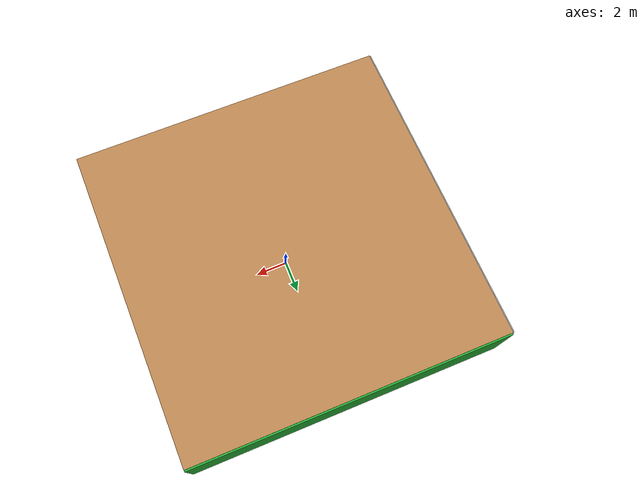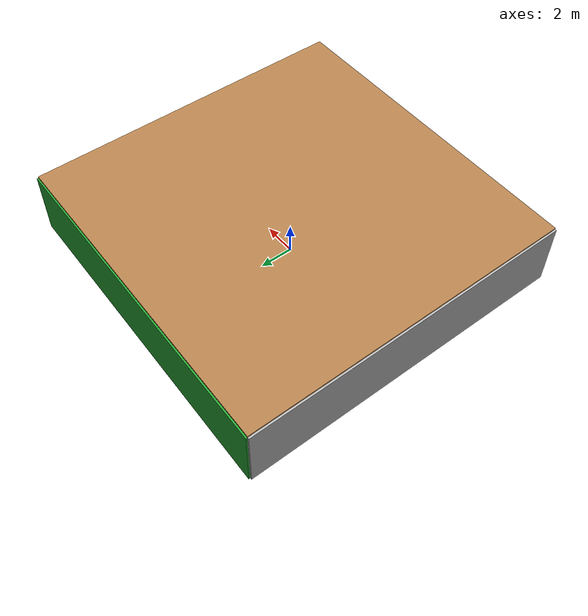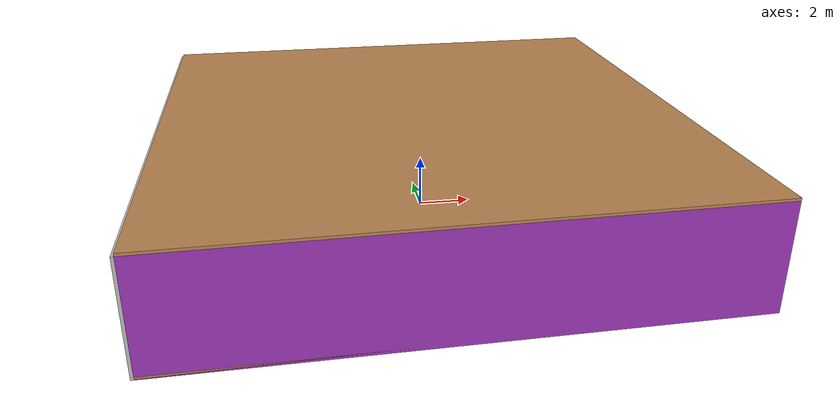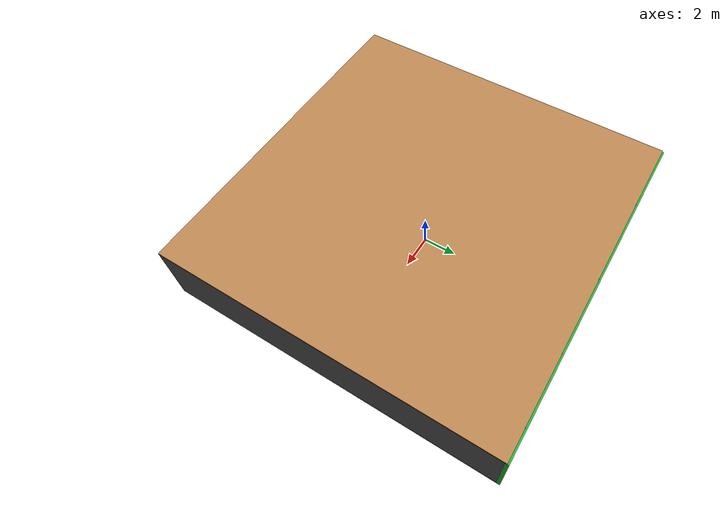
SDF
<sdf version="1.4">
 <world name="default">
  <physics type="ode">
   <max_step_size>0.001</max_step_size>
   <real_time_factor>1</real_time_factor>
   <real_time_update_rate>1000</real_time_update_rate>
   <gravity>0 0 -9.8</gravity>
  </physics>
  <scene><ambient>0.4 0.4 0.4 1</ambient><background>0.7 0.7 0.7 1</background><shadows>1</shadows></scene>
  <model name="Surrounding">
   <static>1</static>
   <link name="Ceiling">
    <collision name="Ceiling_Collision"><geometry><box><size>20 20 0.1</size></box></geometry></collision>
    <visual name="Ceiling_Visual">
     <geometry><box><size>20 20 0.1</size></box></geometry>
     <material>
      <script><uri>file://media/materials/scripts/gazebo.material</uri><name>Gazebo/WoodPallet</name></script>
     </material>
    </visual>
    <pose>0 0 4.05 0 0 0</pose>
   </link>
   <link name="Wall_South">
    <collision name="Wall_South_Collision">
     <geometry><box><size>20 0 4</size></box></geometry>
     <pose>0 0 2 0 -0 0</pose>
    </collision>
    <visual name="Wall_South_Visual">
     <pose>0 0 2 0 -0 0</pose>
     <geometry><box><size>20 0 4</size></box></geometry>
     <material>
      <script><uri>file://media/materials/scripts/gazebo.material</uri><name>Gazebo/Purple</name></script>
     </material>
    </visual>
    <velocity_decay><linear>0</linear><angular>0</angular></velocity_decay>
    <pose>0 -10 0 0 -0 0</pose>
   </link>
   <link name="Wall_East">
    <collision name="Wall_21_Collision">
     <geometry><box><size>20 0 4</size></box></geometry>
     <pose>0 0 2 0 -0 0</pose>
    </collision>
    <visual name="Wall_21_Visual">
     <pose>0 0 2 0 -0 0</pose>
     <geometry><box><size>20 0 4</size></box></geometry>
     <material>
      <script><uri>file://media/materials/scripts/gazebo.material</uri><name>Gazebo/Road</name></script>
     </material>
    </visual>
    <velocity_decay><linear>0</linear><angular>0</angular></velocity_decay>
    <pose>10 0 0 0 -0 1.5708</pose>
   </link>
   <link name="Wall_North">
    <collision name="Wall_22_Collision">
     <geometry><box><size>20 0.2 4</size></box></geometry>
     <pose>0 0 2 0 -0 0</pose>
    </collision>
    <visual name="Wall_22_Visual">
     <pose>0 0 2 0 -0 0</pose>
     <geometry><box><size>20 0.2 4</size></box></geometry>
     <material>
      <script><uri>file://media/materials/scripts/gazebo.material</uri><name>Gazebo/GreenGlow</name></script>
     </material>
    </visual>
    <velocity_decay><linear>0</linear><angular>0</angular></velocity_decay>
    <pose>0 10 0 0 -0 0</pose>
   </link>
   <link name="Wall_West">
    <collision name="Wall_23_Collision">
     <geometry><box><size>20 0.2 4</size></box></geometry>
     <pose>0 0 2 0 -0 0</pose>
    </collision>
    <visual name="Wall_23_Visual">
     <pose>0 0 2 0 -0 0</pose>
     <geometry><box><size>20 0.2 4</size></box></geometry>
     <material>
      <script><uri>file://media/materials/scripts/gazebo.material</uri><name>Gazebo/LightOff</name></script>
     </material>
    </visual>
    <velocity_decay><linear>0</linear><angular>0</angular></velocity_decay>
    <pose>-10 0 0 0 0 -1.5708</pose>
   </link>
   <link name="Ground_link">
    <collision name="collision">
     <pose>0 0 .05 0 -0 0</pose>
     <geometry><box><size>20 20 0.1</size></box></geometry>
    </collision>
    <visual name="visual">
     <pose>0 0 .05 0 -0 0</pose>
     <geometry><box><size>20 20 0.1</size></box></geometry>
     <material>
      <script><uri>file://media/materials/scripts/gazebo.material</uri><name>Gazebo/WoodPallet</name></script>
     </material>
    </visual>
   </link>
   <static>1</static>
  </model>
  <spherical_coordinates>
   <surface_model>EARTH_WGS84</surface_model>
   <latitude_deg>0</latitude_deg>
   <longitude_deg>0</longitude_deg>
   <elevation>0</elevation>
   <heading_deg>0</heading_deg>
  </spherical_coordinates>
  <light name="lightball_0" type="diffuse">
   <diffuse>0.8 0.8 0.8 1</diffuse>
   <specular>0.2 0.2 0.2 1</specular>
   <attenuation>
    <range>100</range>
    <constant>0.7</constant>
    <linear>0.01</linear>
    <quadratic>0.001</quadratic>
   </attenuation>
   <direction>-0.5 0.1 -0.9</direction>
   <pose>-9.83383579533 4.94346763626 3.39225528925 0 0 0</pose>
  </light>
  <light name="lightball_1" type="diffuse">
   <diffuse>0.8 0.8 0.8 1</diffuse>
   <specular>0.2 0.2 0.2 1</specular>
   <attenuation>
    <range>100</range>
    <constant>0.7</constant>
    <linear>0.01</linear>
    <quadratic>0.001</quadratic>
   </attenuation>
   <direction>-0.5 0.1 -0.9</direction>
   <pose>4.62378957551 3.18997249766 0.67804812968 0 0 0</pose>
  </light>
  <light name="lightball_2" type="diffuse">
   <diffuse>0.8 0.8 0.8 1</diffuse>
   <specular>0.2 0.2 0.2 1</specular>
   <attenuation>
    <range>100</range>
    <constant>0.7</constant>
    <linear>0.01</linear>
    <quadratic>0.001</quadratic>
   </attenuation>
   <direction>-0.5 0.1 -0.9</direction>
   <pose>-3.93678189263 0.59846219724 2.08429440484 0 0 0</pose>
  </light>
  <light name="lightball_3" type="diffuse">
   <diffuse>0.8 0.8 0.8 1</diffuse>
   <specular>0.2 0.2 0.2 1</specular>
   <attenuation>
    <range>100</range>
    <constant>0.7</constant>
    <linear>0.01</linear>
    <quadratic>0.001</quadratic>
   </attenuation>
   <direction>-0.5 0.1 -0.9</direction>
   <pose>-5.99168975821 -0.968607289034 3.5078651918 0 0 0</pose>
  </light>
  <include>
   <uri>model://robocup_3Dsim_goal</uri>
   <pose>-5.01417634501 -8.23201062295 0 0 0 1.71554098125</pose>
  </include>
  <include>
   <uri>model://construction_cone</uri>
   <pose>-1.2196656984 -7.48751688415 0 0 0 0.890444148009</pose>
  </include>
  <include>
   <uri>model://robocup_3Dsim_goal</uri>
   <pose>-0.658345327386 -2.57009840211 0 0 0 2.85507134472</pose>
  </include>
  <include><uri>model://cabinet</uri><pose>-1.53285827804 6.9454409225 0 0 0 0.657036810281</pose></include>
  <include><uri>model://cabinet</uri><pose>4.01540265802 -4.13630248825 0 0 0 1.2469424932</pose></include>
  <include><uri>model://cabinet</uri><pose>3.83033832734 3.44664593414 0 0 0 2.65165506556</pose></include>
  <include>
   <uri>model://construction_cone</uri>
   <pose>6.66110410358 -0.949508688585 0 0 0 2.02638694835</pose>
  </include>
  <include>
   <uri>model://construction_cone</uri>
   <pose>7.81589414491 0.94504667419 0 0 0 0.0140117589276</pose>
  </include>
 </world>
</sdf>

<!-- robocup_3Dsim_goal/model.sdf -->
<sdf version="1.5">
  <model name="robocup_3d_goal">
    <static>true</static>
    <link name="left_post">
      <pose>0 1.05 0.45 0 0 0</pose>
      <collision name="collision">
        <geometry>
          <cylinder>
            <radius>0.05</radius>
            <length>0.9</length>
          </cylinder>
        </geometry>
      </collision>
      <visual name="visual">
        <geometry>
          <cylinder>
            <radius>0.05</radius>
            <length>0.9</length>
          </cylinder>
        </geometry>
        <material>
          <script>
            <uri>file://media/materials/scripts/gazebo.material</uri>
            <name>Gazebo/ZincYellow</name>
          </script>
        </material>
      </visual>
    </link>
    <link name="left_support_horiz_lower">
      <pose>0.30 1.05 0.01 0 0 0</pose>
      <collision name="collision">
        <geometry>
          <box>
            <size>0.50 0.02 0.02</size>
          </box>
        </geometry>
      </collision>
      <visual name="visual">
        <geometry>
          <box>
            <size>0.50 0.02 0.02</size>
          </box>
        </geometry>
        <material>
          <script>
            <uri>file://media/materials/scripts/gazebo.material</uri>
            <name>Gazebo/White</name>
          </script>
        </material>
      </visual>
    </link>
    <link name="left_support_horiz_upper">
      <pose>0.30 1.05 0.79 0 0 0</pose>
      <collision name="collision">
        <geometry>
          <box>
            <size>0.50 0.02 0.02</size>
          </box>
        </geometry>
      </collision>
      <visual name="visual">
        <geometry>
          <box>
            <size>0.50 0.02 0.02</size>
          </box>
        </geometry>
        <material>
          <script>
            <uri>file://media/materials/scripts/gazebo.material</uri>
            <name>Gazebo/White</name>
          </script>
        </material>
      </visual>
    </link>
    <link name="left_support_vertical">
      <pose>0.56 1.05 0.4 0 1.5708 0</pose>
      <collision name="collision">
        <geometry>
          <box>
            <size>0.80 0.02 0.02</size>
          </box>
        </geometry>
      </collision>
      <visual name="visual">
        <geometry>
          <box>
            <size>0.80 0.02 0.02</size>
          </box>
        </geometry>
        <material>
          <script>
            <uri>file://media/materials/scripts/gazebo.material</uri>
            <name>Gazebo/White</name>
          </script>
        </material>
      </visual>
    </link>
    <link name="right_support_horiz_lower">
      <pose>0.30 -1.05 0.01 0 0 0</pose>
      <collision name="collision">
        <geometry>
          <box>
            <size>0.50 0.02 0.02</size>
          </box>
        </geometry>
      </collision>
      <visual name="visual">
        <geometry>
          <box>
            <size>0.50 0.02 0.02</size>
          </box>
        </geometry>
        <material>
          <script>
            <uri>file://media/materials/scripts/gazebo.material</uri>
            <name>Gazebo/White</name>
          </script>
        </material>
      </visual>
    </link>
    <link name="right_support_horiz_upper">
      <pose>0.30 -1.05 0.79 0 0 0</pose>
      <collision name="collision">
        <geometry>
          <box>
            <size>0.50 0.02 0.02</size>
          </box>
        </geometry>
      </collision>
      <visual name="visual">
        <geometry>
          <box>
            <size>0.50 0.02 0.02</size>
          </box>
        </geometry>
        <material>
          <script>
            <uri>file://media/materials/scripts/gazebo.material</uri>
            <name>Gazebo/White</name>
          </script>
        </material>
      </visual>
    </link>
    <link name="right_support_vertical">
      <pose>0.56 -1.05 0.4 0 1.5708 0</pose>
      <collision name="collision">
        <geometry>
          <box>
            <size>0.80 0.02 0.02</size>
          </box>
        </geometry>
      </collision>
      <visual name="visual">
        <geometry>
          <box>
            <size>0.80 0.02 0.02</size>
          </box>
        </geometry>
        <material>
          <script>
            <uri>file://media/materials/scripts/gazebo.material</uri>
            <name>Gazebo/White</name>
          </script>
        </material>
      </visual>
    </link>
    <link name="center_support_horiz_lower">
      <pose>0.56 0 0.01 0 1.5708 0</pose>
      <collision name="collision">
        <geometry>
          <box>
            <size>0.02 2.08 0.02</size>
          </box>
        </geometry>
      </collision>
      <visual name="visual">
        <geometry>
          <box>
            <size>0.02 2.08 0.02</size>
          </box>
        </geometry>
        <material>
          <script>
            <uri>file://media/materials/scripts/gazebo.material</uri>
            <name>Gazebo/White</name>
          </script>
        </material>
      </visual>
    </link>
    <link name="center_support_horiz_upper">
      <pose>0.56 0 0.79 0 1.5708 0</pose>
      <collision name="collision">
        <geometry>
          <box>
            <size>0.02 2.08 0.02</size>
          </box>
        </geometry>
      </collision>
      <visual name="visual">
        <geometry>
          <box>
            <size>0.02 2.08 0.02</size>
          </box>
        </geometry>
        <material>
          <script>
            <uri>file://media/materials/scripts/gazebo.material</uri>
            <name>Gazebo/White</name>
          </script>
        </material>
      </visual>
    </link>
    <link name="right_post">
      <pose>0 -1.05 0.45 0 0 0</pose>
      <collision name="collision">
        <geometry>
          <cylinder>
            <radius>0.05</radius>
            <length>0.9</length>
          </cylinder>
        </geometry>
      </collision>
      <visual name="visual">
        <geometry>
          <cylinder>
            <radius>0.05</radius>
            <length>0.9</length>
          </cylinder>
        </geometry>
        <material>
          <script>
            <uri>file://media/materials/scripts/gazebo.material</uri>
            <name>Gazebo/ZincYellow</name>
          </script>
        </material>
      </visual>
    </link>
    <link name="crossbar">
      <pose>0 0 0.85 1.57 1.57 0</pose>
      <collision name="collision">
        <geometry>
          <cylinder>
            <radius>0.05</radius>
            <length>2.0</length>
          </cylinder>
        </geometry>
      </collision>
      <visual name="visual">
        <geometry>
          <cylinder>
            <radius>0.05</radius>
            <length>2.0</length>
          </cylinder>
        </geometry>
        <material>
          <script>
            <uri>file://media/materials/scripts/gazebo.material</uri>
            <name>Gazebo/ZincYellow</name>
          </script>
        </material>
      </visual>
    </link>
    <link name="center_net">
      <pose>0.56 0 0.40 0 0 0</pose>
      <collision name="collision">
        <geometry>
          <box>
            <size>0.01 2.1 0.80</size>
          </box>
        </geometry>
      </collision>
      <visual name="visual">
        <geometry>
          <box>
            <size>0.01 2.1 0.80</size>
          </box>
        </geometry>
        <material>
          <script>
            <uri>model://../model_source/models/robocup09_spl_field/materials/scripts/</uri>
            <uri>model://../model_source/models/robocup09_spl_field/materials/textures/</uri>
            <name>RoboCup/Net</name>
          </script>
        </material>
      </visual>
    </link>
    <link name="left_net">
      <pose>0.30 1.05 0.40 0 0 0</pose>
      <collision name="collision">
        <geometry>
          <box>
            <size>0.50 0.01 0.76</size>
          </box>
        </geometry>
      </collision>
      <visual name="visual">
        <geometry>
          <box>
            <size>0.50 0.01 0.76</size>
          </box>
        </geometry>
        <material>
          <script>
            <uri>model://../model_source/models/robocup09_spl_field/materials/scripts/</uri>
            <uri>model://../model_source/models/robocup09_spl_field/materials/textures/</uri>
            <name>RoboCup/Net</name>
          </script>
        </material>
      </visual>
    </link>
    <link name="right_net">
      <pose>0.30 -1.05 0.40 0 0 0</pose>
      <collision name="collision">
        <geometry>
          <box>
            <size>0.50 0.01 0.76</size>
          </box>
        </geometry>
      </collision>
      <visual name="visual">
        <geometry>
          <box>
            <size>0.50 0.01 0.76</size>
          </box>
        </geometry>
        <material>
          <script>
            <uri>model://../model_source/models/robocup09_spl_field/materials/scripts/</uri>
            <uri>model://../model_source/models/robocup09_spl_field/materials/textures/</uri>
            <name>RoboCup/Net</name>
          </script>
        </material>
      </visual>
    </link>
  </model>
</sdf>

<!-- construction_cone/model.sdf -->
<sdf version="1.5">
  <model name="Construction Cone">
    <link name="link">
      <collision name="collision">
        <geometry>
          <mesh>
            <scale>10 10 10</scale>
            <uri>file://isr-testbed/construction_cone/meshes/construction_cone.dae</uri>
          </mesh>
        </geometry>
      </collision>
      <visual name="visual">
        <geometry>
          <mesh>
            <scale>10 10 10</scale>
            <uri>file://isr-testbed/construction_cone/meshes/construction_cone.dae</uri>
          </mesh>
        </geometry>
      </visual>
    </link>
  </model>
</sdf>

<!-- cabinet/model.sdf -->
<sdf version="1.5">
  <model name="cabinet">
    <static>true</static>
    <link name="cabinet_bottom_plate">
      <inertial>
        <pose>0 0 -1 0 0 0</pose>
        <inertia>
          <ixx>2.050000</ixx>
          <ixy>0</ixy>
          <ixz>0</ixz>
          <iyy>2.050000</iyy>
          <iyz>0</iyz>
          <izz>2.050000</izz>
        </inertia>
        <mass>25.000000</mass>
      </inertial>
      <collision name="cabinet_bottom_plate_geom">
        <pose>0 0 0.010000 0 0 0</pose>
        <geometry>
          <box>
            <size>0.450000 0.450000 0.020000</size>
          </box>
        </geometry>
      </collision>
      <visual name="cabinet_bottom_plate_geom_visual">
        <pose>0 0 0.010000 0 0 0</pose>
        <geometry>
          <box>
            <size>0.450000 0.450000 0.020000</size>
          </box>
        </geometry>
        <material>
          <script>
            <uri>model://media/materials/scripts/gazebo.material</uri>
            <name>Gazebo/Wood</name>
          </script>
        </material>
      </visual>
      <collision name="cabinet_bottom_plate_geom_cabinet_back_plate">
        <pose>0.235000 0 0.510000 0 0 0</pose>
        <geometry>
          <box>
            <size>0.020000 0.450000 1.020000</size>
          </box>
        </geometry>
      </collision>
      <visual name="cabinet_bottom_plate_geom_cabinet_back_plate_visual">
        <pose>0.235000 0 0.510000 0 0 0</pose>
        <geometry>
          <box>
            <size>0.020000 0.450000 1.020000</size>
          </box>
        </geometry>
        <material>
          <script>
            <uri>model://media/materials/scripts/gazebo.material</uri>
            <name>Gazebo/Wood</name>
          </script>
        </material>
      </visual>
      <collision name="cabinet_bottom_plate_geom_cabinet_left_plate">
        <pose>0 0.235000 0.510000 0 0 0</pose>
        <geometry>
          <box>
            <size>0.450000 0.020000 1.020000</size>
          </box>
        </geometry>
      </collision>
      <visual name="cabinet_bottom_plate_geom_cabinet_left_plate_visual">
        <pose>0 0.235000 0.510000 0 0 0</pose>
        <geometry>
          <box>
            <size>0.450000 0.020000 1.020000</size>
          </box>
        </geometry>
        <material>
          <script>
            <uri>model://media/materials/scripts/gazebo.material</uri>
            <name>Gazebo/Wood</name>
          </script>
        </material>
      </visual>
      <collision name="cabinet_bottom_plate_geom_cabinet_middle_plate">
        <pose>0 0 0.510000 0 0 0</pose>
        <geometry>
          <box>
            <size>0.450000 0.450000 0.020000</size>
          </box>
        </geometry>
      </collision>
      <visual name="cabinet_bottom_plate_geom_cabinet_middle_plate_visual">
        <pose>0 0 0.510000 0 0 0</pose>
        <geometry>
          <box>
            <size>0.450000 0.450000 0.020000</size>
          </box>
        </geometry>
        <material>
          <script>
            <uri>model://media/materials/scripts/gazebo.material</uri>
            <name>Gazebo/Wood</name>
          </script>
        </material>
      </visual>
      <collision name="cabinet_bottom_plate_geom_cabinet_right_plate">
        <pose>0 -0.235000 0.510000 0 0 0</pose>
        <geometry>
          <box>
            <size>0.450000 0.020000 1.020000</size>
          </box>
        </geometry>
      </collision>
      <visual name="cabinet_bottom_plate_geom_cabinet_right_plate_visual">
        <pose>0 -0.235000 0.510000 0 0 0</pose>
        <geometry>
          <box>
            <size>0.450000 0.020000 1.020000</size>
          </box>
        </geometry>
        <material>
          <script>
            <uri>model://media/materials/scripts/gazebo.material</uri>
            <name>Gazebo/Wood</name>
          </script>
        </material>
      </visual>
      <collision name="cabinet_bottom_plate_geom_cabinet_top_plate">
        <pose>0 0 1.010000 0 0 0</pose>
        <geometry>
          <box>
            <size>0.450000 0.450000 0.020000</size>
          </box>
        </geometry>
      </collision>
      <visual name="cabinet_bottom_plate_geom_cabinet_top_plate_visual">
        <pose>0 0 1.010000 0 0 0</pose>
        <geometry>
          <box>
            <size>0.450000 0.450000 0.020000</size>
          </box>
        </geometry>
        <material>
          <script>
            <uri>model://media/materials/scripts/gazebo.material</uri>
            <name>Gazebo/Wood</name>
          </script>
        </material>
      </visual>
    </link>
  </model>
</sdf>
